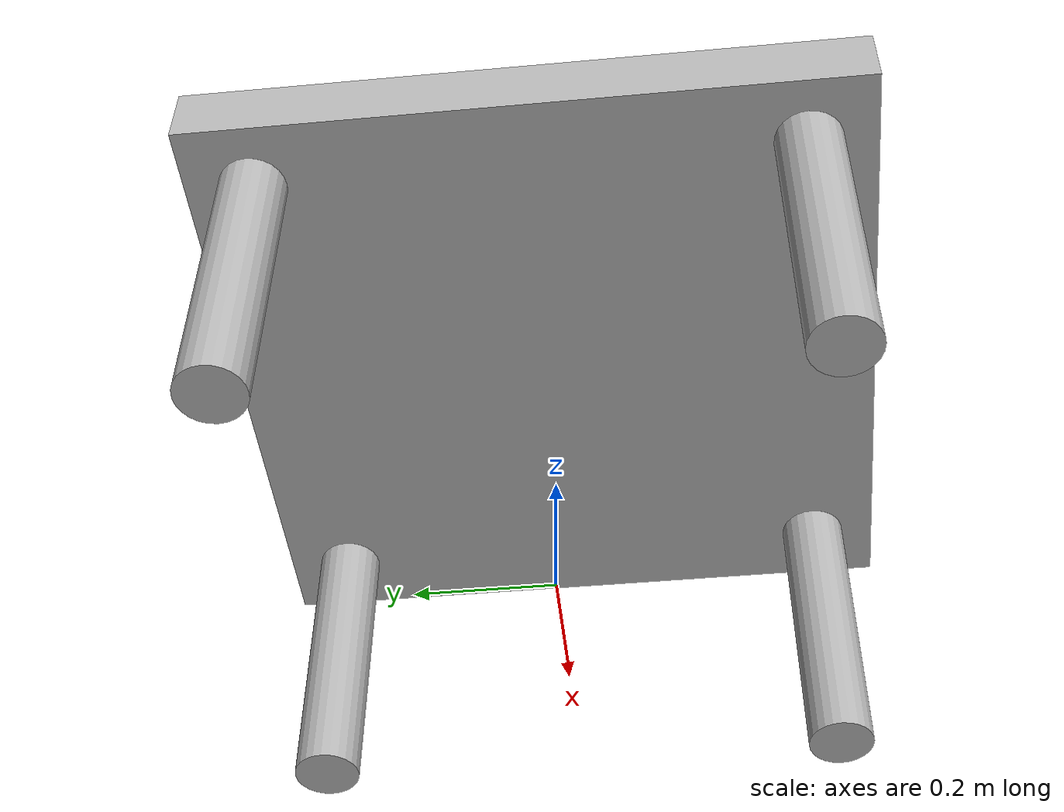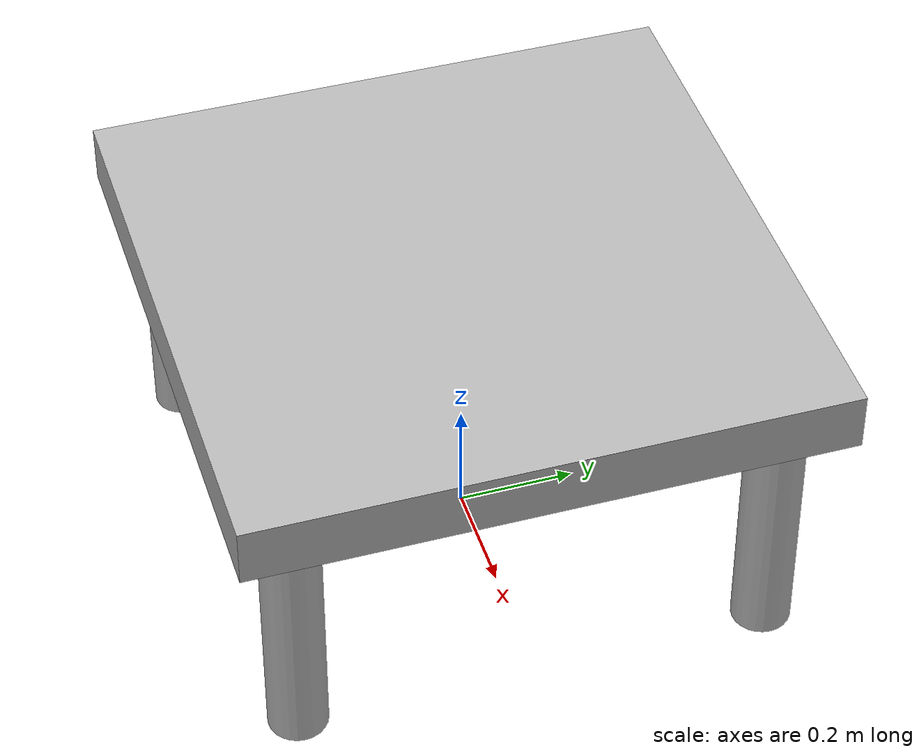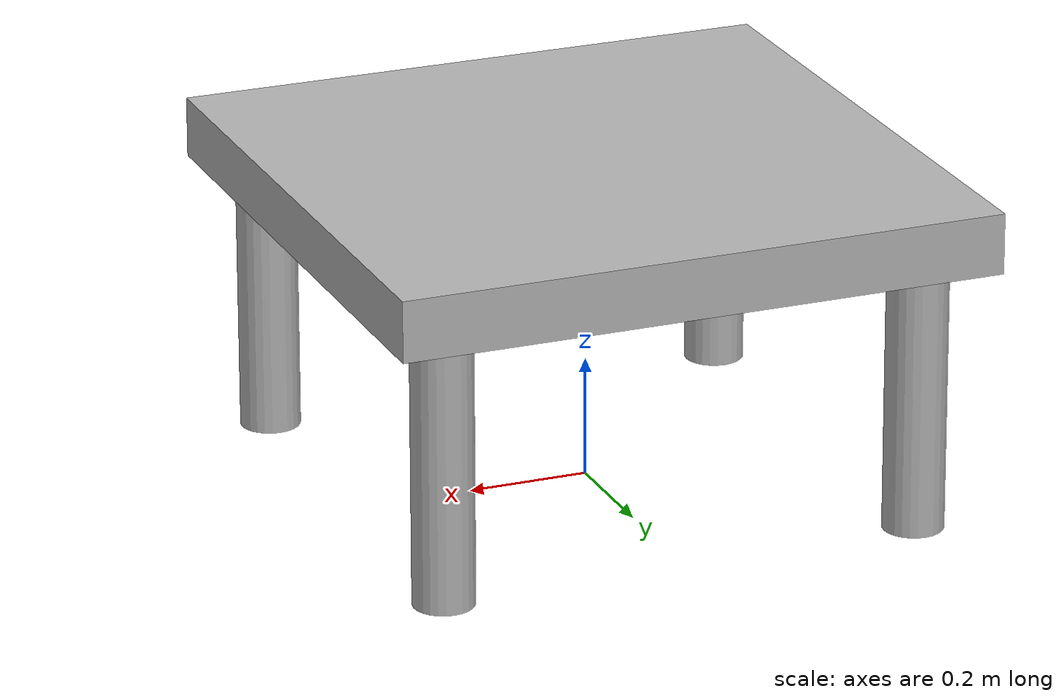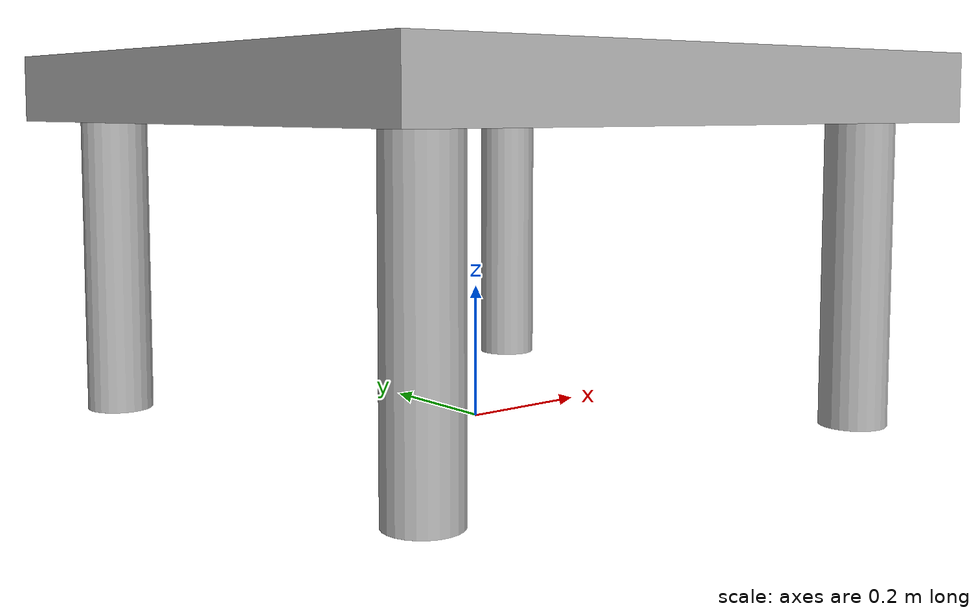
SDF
<?xml version="1.0" ?>
<sdf version="1.7">
  <model name="table">
    <pose>0 0 0.5 0 0 0</pose> <!-- Position of the table -->

    <!-- Tabletop -->
    <link name="table_body">
      <collision name="collision_table_body">
        <geometry>
          <box>
            <size>1.0 1.0 0.1</size> <!-- Tabletop dimensions -->
          </box>
        </geometry>
      </collision>
      <visual name="visual_table_body">
        <geometry>
          <box>
            <size>1.0 1.0 0.1</size>
          </box>
        </geometry>
      </visual>
    </link>

    <!-- Table legs -->
    <link name="leg_1">
      <pose>-0.4 -0.4 -0.25 0 0 0</pose>
      <collision name="collision_leg_1">
        <geometry>
          <cylinder>
            <radius>0.05</radius>
            <length>0.5</length>
          </cylinder>
        </geometry>
      </collision>
      <visual name="visual_leg_1">
        <geometry>
          <cylinder>
            <radius>0.05</radius>
            <length>0.5</length>
          </cylinder>
        </geometry>
      </visual>
    </link>

    <link name="leg_2">
      <pose>0.4 -0.4 -0.25 0 0 0</pose>
      <collision name="collision_leg_2">
        <geometry>
          <cylinder>
            <radius>0.05</radius>
            <length>0.5</length>
          </cylinder>
        </geometry>
      </collision>
      <visual name="visual_leg_2">
        <geometry>
          <cylinder>
            <radius>0.05</radius>
            <length>0.5</length>
          </cylinder>
        </geometry>
      </visual>
    </link>

    <link name="leg_3">
      <pose>-0.4 0.4 -0.25 0 0 0</pose>
      <collision name="collision_leg_3">
        <geometry>
          <cylinder>
            <radius>0.05</radius>
            <length>0.5</length>
          </cylinder>
        </geometry>
      </collision>
      <visual name="visual_leg_3">
        <geometry>
          <cylinder>
            <radius>0.05</radius>
            <length>0.5</length>
          </cylinder>
        </geometry>
      </visual>
    </link>

    <link name="leg_4">
      <pose>0.4 0.4 -0.25 0 0 0</pose>
      <collision name="collision_leg_4">
        <geometry>
          <cylinder>
            <radius>0.05</radius>
            <length>0.5</length>
          </cylinder>
        </geometry>
      </collision>
      <visual name="visual_leg_4">
        <geometry>
          <cylinder>
            <radius>0.05</radius>
            <length>0.5</length>
          </cylinder>
        </geometry>
      </visual>
    </link>

    <!-- Joints to connect legs to tabletop -->
    <joint name="joint_leg_1" type="fixed">
      <parent>table_body</parent>
      <child>leg_1</child>
    </joint>

    <joint name="joint_leg_2" type="fixed">
      <parent>table_body</parent>
      <child>leg_2</child>
    </joint>

    <joint name="joint_leg_3" type="fixed">
      <parent>table_body</parent>
      <child>leg_3</child>
    </joint>

    <joint name="joint_leg_4" type="fixed">
      <parent>table_body</parent>
      <child>leg_4</child>
    </joint>
  </model>
</sdf>
